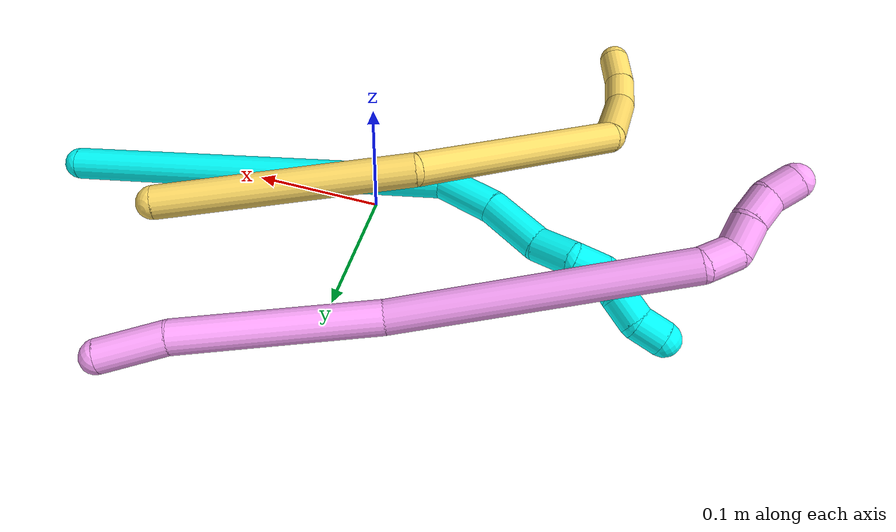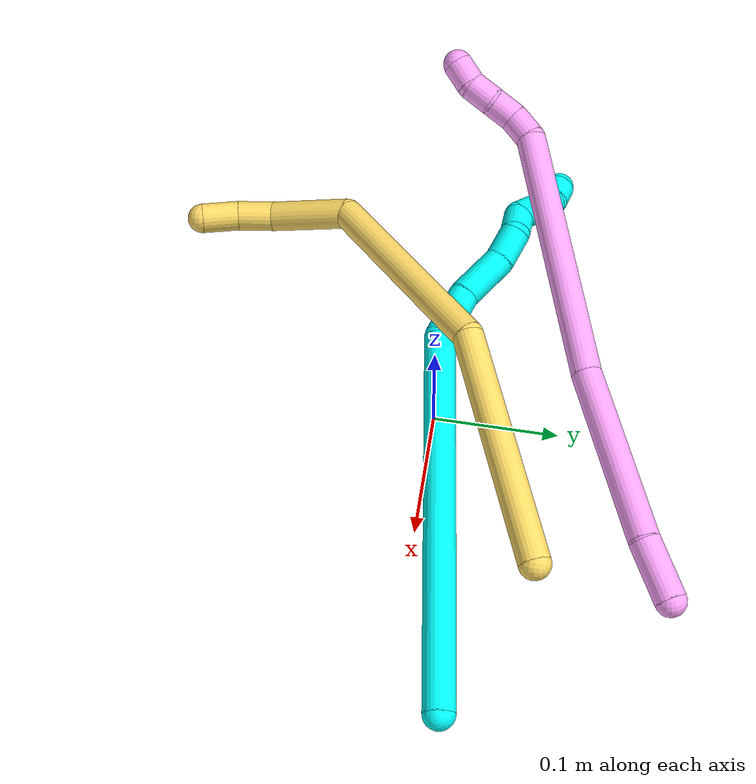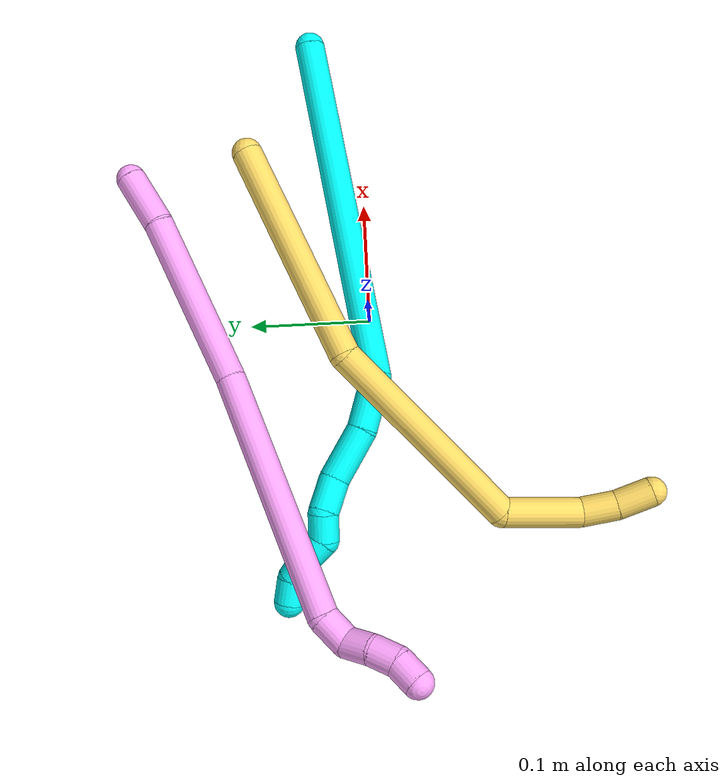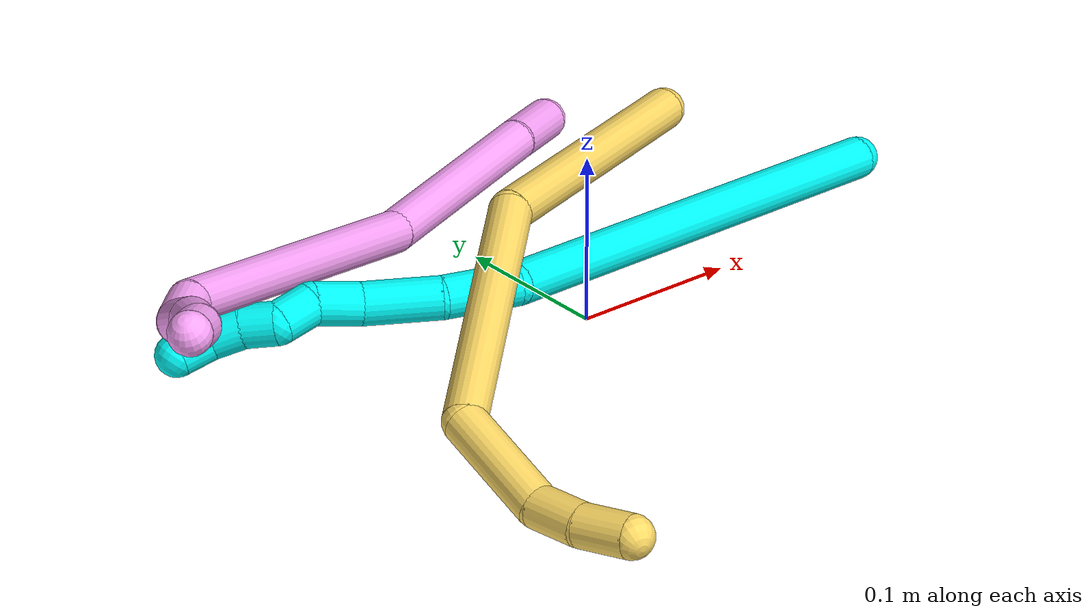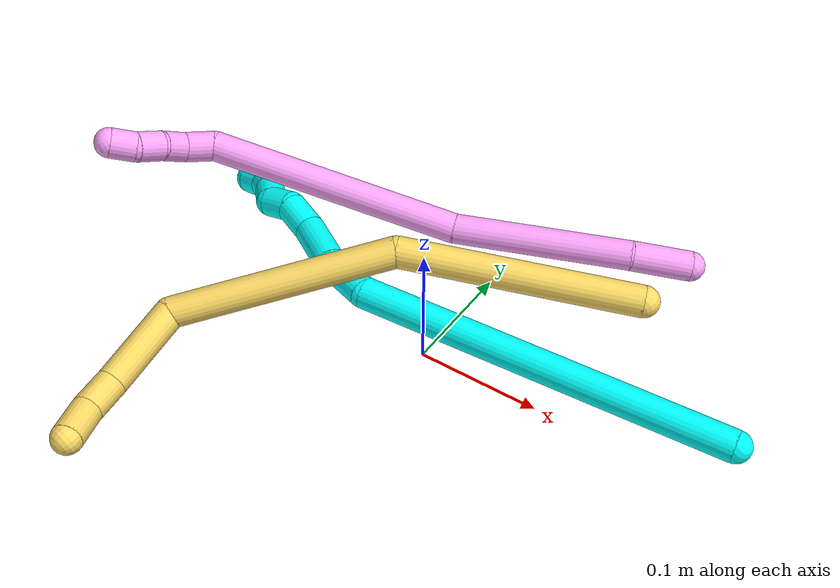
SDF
<sdf version="1.7">
 <world name="default">
  <model name="3">
   <static>0</static>
   <link name="3">
    <collision name="collision-cylinder-e_1_1_4">
     <pose>-0.122376 -0.035124 -0.078022 2.71859 -0.960614 -2.35977</pose>
     <geometry><cylinder><radius>0.0125</radius><length>0.298643</length></cylinder></geometry>
     <surface>
      <friction><ode><mu>1.16</mu><mu2>1.16</mu2><slip1>0</slip1><slip2>0</slip2></ode></friction>
      <contact><ode><kp>1e+06</kp><kd>1</kd><max_vel>0</max_vel><min_depth>0.001</min_depth></ode></contact>
     </surface>
    </collision>
    <visual name="visual-cylinder-e_1_1_4">
     <pose>-0.122376 -0.035124 -0.078022 2.71859 -0.960614 -2.35977</pose>
     <geometry><cylinder><radius>0.0125</radius><length>0.298643</length></cylinder></geometry>
     <material><ambient>0.003922 1 0.996078 1</ambient></material>
    </visual>
    <collision name="collision-cylinder-e_2_4_5">
     <pose>-0.261358 -0.065689 -0.169871 -2.82307 -0.850985 2.46035</pose>
     <geometry><cylinder><radius>0.0125</radius><length>0.044171</length></cylinder></geometry>
     <surface>
      <friction><ode><mu>1.16</mu><mu2>1.16</mu2><slip1>0</slip1><slip2>0</slip2></ode></friction>
      <contact><ode><kp>1e+06</kp><kd>1</kd><max_vel>0</max_vel><min_depth>0.001</min_depth></ode></contact>
     </surface>
    </collision>
    <visual name="visual-cylinder-e_2_4_5">
     <pose>-0.261358 -0.065689 -0.169871 -2.82307 -0.850985 2.46035</pose>
     <geometry><cylinder><radius>0.0125</radius><length>0.044171</length></cylinder></geometry>
     <material><ambient>0.003922 1 0.996078 1</ambient></material>
    </visual>
    <collision name="collision-cylinder-e_3_5_6">
     <pose>-0.293149 -0.051076 -0.197343 -2.50658 -0.730591 1.72194</pose>
     <geometry><cylinder><radius>0.0125</radius><length>0.045512</length></cylinder></geometry>
     <surface>
      <friction><ode><mu>1.16</mu><mu2>1.16</mu2><slip1>0</slip1><slip2>0</slip2></ode></friction>
      <contact><ode><kp>1e+06</kp><kd>1</kd><max_vel>0</max_vel><min_depth>0.001</min_depth></ode></contact>
     </surface>
    </collision>
    <visual name="visual-cylinder-e_3_5_6">
     <pose>-0.293149 -0.051076 -0.197343 -2.50658 -0.730591 1.72194</pose>
     <geometry><cylinder><radius>0.0125</radius><length>0.045512</length></cylinder></geometry>
     <material><ambient>0.003922 1 0.996078 1</ambient></material>
    </visual>
    <collision name="collision-cylinder-e_4_6_7">
     <pose>-0.320336 -0.037375 -0.21779 -2.64941 -0.999272 2.27901</pose>
     <geometry><cylinder><radius>0.0125</radius><length>0.028538</length></cylinder></geometry>
     <surface>
      <friction><ode><mu>1.16</mu><mu2>1.16</mu2><slip1>0</slip1><slip2>0</slip2></ode></friction>
      <contact><ode><kp>1e+06</kp><kd>1</kd><max_vel>0</max_vel><min_depth>0.001</min_depth></ode></contact>
     </surface>
    </collision>
    <visual name="visual-cylinder-e_4_6_7">
     <pose>-0.320336 -0.037375 -0.21779 -2.64941 -0.999272 2.27901</pose>
     <geometry><cylinder><radius>0.0125</radius><length>0.028538</length></cylinder></geometry>
     <material><ambient>0.003922 1 0.996078 1</ambient></material>
    </visual>
    <collision name="collision-cylinder-e_5_7_8">
     <pose>-0.339186 -0.034502 -0.233476 3.05466 -0.654926 -2.8869</pose>
     <geometry><cylinder><radius>0.0125</radius><length>0.022489</length></cylinder></geometry>
     <surface>
      <friction><ode><mu>1.16</mu><mu2>1.16</mu2><slip1>0</slip1><slip2>0</slip2></ode></friction>
      <contact><ode><kp>1e+06</kp><kd>1</kd><max_vel>0</max_vel><min_depth>0.001</min_depth></ode></contact>
     </surface>
    </collision>
    <visual name="visual-cylinder-e_5_7_8">
     <pose>-0.339186 -0.034502 -0.233476 3.05466 -0.654926 -2.8869</pose>
     <geometry><cylinder><radius>0.0125</radius><length>0.022489</length></cylinder></geometry>
     <material><ambient>0.003922 1 0.996078 1</ambient></material>
    </visual>
    <collision name="collision-cylinder-e_6_8_9">
     <pose>-0.35038 -0.028716 -0.248604 -2.33148 -0.447323 0.975524</pose>
     <geometry><cylinder><radius>0.0125</radius><length>0.020092</length></cylinder></geometry>
     <surface>
      <friction><ode><mu>1.16</mu><mu2>1.16</mu2><slip1>0</slip1><slip2>0</slip2></ode></friction>
      <contact><ode><kp>1e+06</kp><kd>1</kd><max_vel>0</max_vel><min_depth>0.001</min_depth></ode></contact>
     </surface>
    </collision>
    <visual name="visual-cylinder-e_6_8_9">
     <pose>-0.35038 -0.028716 -0.248604 -2.33148 -0.447323 0.975524</pose>
     <geometry><cylinder><radius>0.0125</radius><length>0.020092</length></cylinder></geometry>
     <material><ambient>0.003922 1 0.996078 1</ambient></material>
    </visual>
    <collision name="collision-cylinder-e_7_9_10">
     <pose>-0.358574 -0.01732 -0.262958 -2.60398 -0.387012 1.23661</pose>
     <geometry><cylinder><radius>0.0125</radius><length>0.02039</length></cylinder></geometry>
     <surface>
      <friction><ode><mu>1.16</mu><mu2>1.16</mu2><slip1>0</slip1><slip2>0</slip2></ode></friction>
      <contact><ode><kp>1e+06</kp><kd>1</kd><max_vel>0</max_vel><min_depth>0.001</min_depth></ode></contact>
     </surface>
    </collision>
    <visual name="visual-cylinder-e_7_9_10">
     <pose>-0.358574 -0.01732 -0.262958 -2.60398 -0.387012 1.23661</pose>
     <geometry><cylinder><radius>0.0125</radius><length>0.02039</length></cylinder></geometry>
     <material><ambient>0.003922 1 0.996078 1</ambient></material>
    </visual>
    <collision name="collision-cylinder-e_8_10_2">
     <pose>-0.368102 -0.011614 -0.279352 -3.0368 -0.59852 2.80484</pose>
     <geometry><cylinder><radius>0.0125</radius><length>0.020167</length></cylinder></geometry>
     <surface>
      <friction><ode><mu>1.16</mu><mu2>1.16</mu2><slip1>0</slip1><slip2>0</slip2></ode></friction>
      <contact><ode><kp>1e+06</kp><kd>1</kd><max_vel>0</max_vel><min_depth>0.001</min_depth></ode></contact>
     </surface>
    </collision>
    <visual name="visual-cylinder-e_8_10_2">
     <pose>-0.368102 -0.011614 -0.279352 -3.0368 -0.59852 2.80484</pose>
     <geometry><cylinder><radius>0.0125</radius><length>0.020167</length></cylinder></geometry>
     <material><ambient>0.003922 1 0.996078 1</ambient></material>
    </visual>
    <collision name="collision-sphere-2">
     <pose>-0.373784 -0.010743 -0.287636 0 -0 0</pose>
     <geometry><sphere><radius>0.0125</radius></sphere></geometry>
     <surface>
      <friction><ode><mu>1.16</mu><mu2>1.16</mu2><slip1>0</slip1><slip2>0</slip2></ode></friction>
      <contact><ode><kp>1e+06</kp><kd>1</kd><max_vel>0</max_vel><min_depth>0.001</min_depth></ode></contact>
     </surface>
    </collision>
    <visual name="visual-sphere-2">
     <pose>-0.373784 -0.010743 -0.287636 0 -0 0</pose>
     <geometry><sphere><radius>0.0125</radius></sphere></geometry>
     <material><ambient>0.003922 1 0.996078 1</ambient></material>
    </visual>
    <collision name="collision-sphere-10">
     <pose>-0.362421 -0.012486 -0.271067 0 -0 0</pose>
     <geometry><sphere><radius>0.0125</radius></sphere></geometry>
     <surface>
      <friction><ode><mu>1.16</mu><mu2>1.16</mu2><slip1>0</slip1><slip2>0</slip2></ode></friction>
      <contact><ode><kp>1e+06</kp><kd>1</kd><max_vel>0</max_vel><min_depth>0.001</min_depth></ode></contact>
     </surface>
    </collision>
    <visual name="visual-sphere-10">
     <pose>-0.362421 -0.012486 -0.271067 0 -0 0</pose>
     <geometry><sphere><radius>0.0125</radius></sphere></geometry>
     <material><ambient>0.003922 1 0.996078 1</ambient></material>
    </visual>
    <collision name="collision-sphere-9">
     <pose>-0.354726 -0.022155 -0.254849 0 -0 0</pose>
     <geometry><sphere><radius>0.0125</radius></sphere></geometry>
     <surface>
      <friction><ode><mu>1.16</mu><mu2>1.16</mu2><slip1>0</slip1><slip2>0</slip2></ode></friction>
      <contact><ode><kp>1e+06</kp><kd>1</kd><max_vel>0</max_vel><min_depth>0.001</min_depth></ode></contact>
     </surface>
    </collision>
    <visual name="visual-sphere-9">
     <pose>-0.354726 -0.022155 -0.254849 0 -0 0</pose>
     <geometry><sphere><radius>0.0125</radius></sphere></geometry>
     <material><ambient>0.003922 1 0.996078 1</ambient></material>
    </visual>
    <collision name="collision-sphere-4">
     <pose>-0.244751 -0.070248 -0.156044 0 -0 0</pose>
     <geometry><sphere><radius>0.0125</radius></sphere></geometry>
     <surface>
      <friction><ode><mu>1.16</mu><mu2>1.16</mu2><slip1>0</slip1><slip2>0</slip2></ode></friction>
      <contact><ode><kp>1e+06</kp><kd>1</kd><max_vel>0</max_vel><min_depth>0.001</min_depth></ode></contact>
     </surface>
    </collision>
    <visual name="visual-sphere-4">
     <pose>-0.244751 -0.070248 -0.156044 0 -0 0</pose>
     <geometry><sphere><radius>0.0125</radius></sphere></geometry>
     <material><ambient>0.003922 1 0.996078 1</ambient></material>
    </visual>
    <collision name="collision-sphere-1">
     <geometry><sphere><radius>0.0125</radius></sphere></geometry>
     <surface>
      <friction><ode><mu>1.16</mu><mu2>1.16</mu2><slip1>0</slip1><slip2>0</slip2></ode></friction>
      <contact><ode><kp>1e+06</kp><kd>1</kd><max_vel>0</max_vel><min_depth>0.001</min_depth></ode></contact>
     </surface>
    </collision>
    <visual name="visual-sphere-1">
     <geometry><sphere><radius>0.0125</radius></sphere></geometry>
     <material><ambient>0.003922 1 0.996078 1</ambient></material>
    </visual>
    <collision name="collision-sphere-8">
     <pose>-0.346035 -0.035276 -0.24236 0 -0 0</pose>
     <geometry><sphere><radius>0.0125</radius></sphere></geometry>
     <surface>
      <friction><ode><mu>1.16</mu><mu2>1.16</mu2><slip1>0</slip1><slip2>0</slip2></ode></friction>
      <contact><ode><kp>1e+06</kp><kd>1</kd><max_vel>0</max_vel><min_depth>0.001</min_depth></ode></contact>
     </surface>
    </collision>
    <visual name="visual-sphere-8">
     <pose>-0.346035 -0.035276 -0.24236 0 -0 0</pose>
     <geometry><sphere><radius>0.0125</radius></sphere></geometry>
     <material><ambient>0.003922 1 0.996078 1</ambient></material>
    </visual>
    <collision name="collision-sphere-5">
     <pose>-0.277964 -0.061129 -0.183699 0 -0 0</pose>
     <geometry><sphere><radius>0.0125</radius></sphere></geometry>
     <surface>
      <friction><ode><mu>1.16</mu><mu2>1.16</mu2><slip1>0</slip1><slip2>0</slip2></ode></friction>
      <contact><ode><kp>1e+06</kp><kd>1</kd><max_vel>0</max_vel><min_depth>0.001</min_depth></ode></contact>
     </surface>
    </collision>
    <visual name="visual-sphere-5">
     <pose>-0.277964 -0.061129 -0.183699 0 -0 0</pose>
     <geometry><sphere><radius>0.0125</radius></sphere></geometry>
     <material><ambient>0.003922 1 0.996078 1</ambient></material>
    </visual>
    <collision name="collision-sphere-6">
     <pose>-0.308335 -0.041022 -0.210988 0 -0 0</pose>
     <geometry><sphere><radius>0.0125</radius></sphere></geometry>
     <surface>
      <friction><ode><mu>1.16</mu><mu2>1.16</mu2><slip1>0</slip1><slip2>0</slip2></ode></friction>
      <contact><ode><kp>1e+06</kp><kd>1</kd><max_vel>0</max_vel><min_depth>0.001</min_depth></ode></contact>
     </surface>
    </collision>
    <visual name="visual-sphere-6">
     <pose>-0.308335 -0.041022 -0.210988 0 -0 0</pose>
     <geometry><sphere><radius>0.0125</radius></sphere></geometry>
     <material><ambient>0.003922 1 0.996078 1</ambient></material>
    </visual>
    <collision name="collision-sphere-7">
     <pose>-0.332337 -0.033728 -0.224592 0 -0 0</pose>
     <geometry><sphere><radius>0.0125</radius></sphere></geometry>
     <surface>
      <friction><ode><mu>1.16</mu><mu2>1.16</mu2><slip1>0</slip1><slip2>0</slip2></ode></friction>
      <contact><ode><kp>1e+06</kp><kd>1</kd><max_vel>0</max_vel><min_depth>0.001</min_depth></ode></contact>
     </surface>
    </collision>
    <visual name="visual-sphere-7">
     <pose>-0.332337 -0.033728 -0.224592 0 -0 0</pose>
     <geometry><sphere><radius>0.0125</radius></sphere></geometry>
     <material><ambient>0.003922 1 0.996078 1</ambient></material>
    </visual>
    <inertial>
     <pose>-0.199953 -0.037445 -0.134483 0 -0 0</pose>
     <mass>0.5</mass>
     <inertia>
      <ixx>-0.001831</ixx>
      <ixy>0</ixy>
      <ixz>0</ixz>
      <iyy>0.001104</iyy>
      <iyz>0</iyz>
      <izz>0.002341</izz>
     </inertia>
    </inertial>
   </link>
   <pose>0.241158 0.039985 0.012428 0.073349 0.677637 -0.052601</pose>
  </model>
  <model name="4">
   <static>0</static>
   <link name="4">
    <collision name="collision-cylinder-e_1_1_4">
     <pose>-0.01867 -0.004927 -0.015165 2.82747 -0.863948 -2.47982</pose>
     <geometry><cylinder><radius>0.0125</radius><length>0.049105</length></cylinder></geometry>
     <surface>
      <friction><ode><mu>1.16</mu><mu2>1.16</mu2><slip1>0</slip1><slip2>0</slip2></ode></friction>
      <contact><ode><kp>1e+06</kp><kd>1</kd><max_vel>0</max_vel><min_depth>0.001</min_depth></ode></contact>
     </surface>
    </collision>
    <visual name="visual-cylinder-e_1_1_4">
     <pose>-0.01867 -0.004927 -0.015165 2.82747 -0.863948 -2.47982</pose>
     <geometry><cylinder><radius>0.0125</radius><length>0.049105</length></cylinder></geometry>
     <material><ambient>1 0.65098 0.996078 1</ambient></material>
    </visual>
    <collision name="collision-cylinder-e_2_4_5">
     <pose>-0.095753 -0.033942 -0.067666 2.56862 -0.920515 -2.06929</pose>
     <geometry><cylinder><radius>0.0125</radius><length>0.146781</length></cylinder></geometry>
     <surface>
      <friction><ode><mu>1.16</mu><mu2>1.16</mu2><slip1>0</slip1><slip2>0</slip2></ode></friction>
      <contact><ode><kp>1e+06</kp><kd>1</kd><max_vel>0</max_vel><min_depth>0.001</min_depth></ode></contact>
     </surface>
    </collision>
    <visual name="visual-cylinder-e_2_4_5">
     <pose>-0.095753 -0.033942 -0.067666 2.56862 -0.920515 -2.06929</pose>
     <geometry><cylinder><radius>0.0125</radius><length>0.146781</length></cylinder></geometry>
     <material><ambient>1 0.65098 0.996078 1</ambient></material>
    </visual>
    <collision name="collision-cylinder-e_3_5_6">
     <pose>-0.224646 -0.094255 -0.174814 2.66294 -0.73066 -2.00592</pose>
     <geometry><cylinder><radius>0.0125</radius><length>0.21122</length></cylinder></geometry>
     <surface>
      <friction><ode><mu>1.16</mu><mu2>1.16</mu2><slip1>0</slip1><slip2>0</slip2></ode></friction>
      <contact><ode><kp>1e+06</kp><kd>1</kd><max_vel>0</max_vel><min_depth>0.001</min_depth></ode></contact>
     </surface>
    </collision>
    <visual name="visual-cylinder-e_3_5_6">
     <pose>-0.224646 -0.094255 -0.174814 2.66294 -0.73066 -2.00592</pose>
     <geometry><cylinder><radius>0.0125</radius><length>0.21122</length></cylinder></geometry>
     <material><ambient>1 0.65098 0.996078 1</ambient></material>
    </visual>
    <collision name="collision-cylinder-e_4_6_7">
     <pose>-0.306135 -0.130608 -0.251183 3.12215 -1.03352 -3.10739</pose>
     <geometry><cylinder><radius>0.0125</radius><length>0.02563</length></cylinder></geometry>
     <surface>
      <friction><ode><mu>1.16</mu><mu2>1.16</mu2><slip1>0</slip1><slip2>0</slip2></ode></friction>
      <contact><ode><kp>1e+06</kp><kd>1</kd><max_vel>0</max_vel><min_depth>0.001</min_depth></ode></contact>
     </surface>
    </collision>
    <visual name="visual-cylinder-e_4_6_7">
     <pose>-0.306135 -0.130608 -0.251183 3.12215 -1.03352 -3.10739</pose>
     <geometry><cylinder><radius>0.0125</radius><length>0.02563</length></cylinder></geometry>
     <material><ambient>1 0.65098 0.996078 1</ambient></material>
    </visual>
    <collision name="collision-cylinder-e_5_7_8">
     <pose>-0.322543 -0.124767 -0.266241 -2.52947 -0.47933 1.31652</pose>
     <geometry><cylinder><radius>0.0125</radius><length>0.023412</length></cylinder></geometry>
     <surface>
      <friction><ode><mu>1.16</mu><mu2>1.16</mu2><slip1>0</slip1><slip2>0</slip2></ode></friction>
      <contact><ode><kp>1e+06</kp><kd>1</kd><max_vel>0</max_vel><min_depth>0.001</min_depth></ode></contact>
     </surface>
    </collision>
    <visual name="visual-cylinder-e_5_7_8">
     <pose>-0.322543 -0.124767 -0.266241 -2.52947 -0.47933 1.31652</pose>
     <geometry><cylinder><radius>0.0125</radius><length>0.023412</length></cylinder></geometry>
     <material><ambient>1 0.65098 0.996078 1</ambient></material>
    </visual>
    <collision name="collision-cylinder-e_6_8_9">
     <pose>-0.335252 -0.114433 -0.281891 -2.59332 -0.717538 1.85469</pose>
     <geometry><cylinder><radius>0.0125</radius><length>0.022235</length></cylinder></geometry>
     <surface>
      <friction><ode><mu>1.16</mu><mu2>1.16</mu2><slip1>0</slip1><slip2>0</slip2></ode></friction>
      <contact><ode><kp>1e+06</kp><kd>1</kd><max_vel>0</max_vel><min_depth>0.001</min_depth></ode></contact>
     </surface>
    </collision>
    <visual name="visual-cylinder-e_6_8_9">
     <pose>-0.335252 -0.114433 -0.281891 -2.59332 -0.717538 1.85469</pose>
     <geometry><cylinder><radius>0.0125</radius><length>0.022235</length></cylinder></geometry>
     <material><ambient>1 0.65098 0.996078 1</ambient></material>
    </visual>
    <collision name="collision-cylinder-e_7_9_2">
     <pose>-0.350124 -0.109704 -0.296753 -3.09458 -0.774888 3.02649</pose>
     <geometry><cylinder><radius>0.0125</radius><length>0.021616</length></cylinder></geometry>
     <surface>
      <friction><ode><mu>1.16</mu><mu2>1.16</mu2><slip1>0</slip1><slip2>0</slip2></ode></friction>
      <contact><ode><kp>1e+06</kp><kd>1</kd><max_vel>0</max_vel><min_depth>0.001</min_depth></ode></contact>
     </surface>
    </collision>
    <visual name="visual-cylinder-e_7_9_2">
     <pose>-0.350124 -0.109704 -0.296753 -3.09458 -0.774888 3.02649</pose>
     <geometry><cylinder><radius>0.0125</radius><length>0.021616</length></cylinder></geometry>
     <material><ambient>1 0.65098 0.996078 1</ambient></material>
    </visual>
    <collision name="collision-sphere-2">
     <pose>-0.357686 -0.109341 -0.304467 0 -0 0</pose>
     <geometry><sphere><radius>0.0125</radius></sphere></geometry>
     <surface>
      <friction><ode><mu>1.16</mu><mu2>1.16</mu2><slip1>0</slip1><slip2>0</slip2></ode></friction>
      <contact><ode><kp>1e+06</kp><kd>1</kd><max_vel>0</max_vel><min_depth>0.001</min_depth></ode></contact>
     </surface>
    </collision>
    <visual name="visual-sphere-2">
     <pose>-0.357686 -0.109341 -0.304467 0 -0 0</pose>
     <geometry><sphere><radius>0.0125</radius></sphere></geometry>
     <material><ambient>1 0.65098 0.996078 1</ambient></material>
    </visual>
    <collision name="collision-sphere-9">
     <pose>-0.342562 -0.110067 -0.289039 0 -0 0</pose>
     <geometry><sphere><radius>0.0125</radius></sphere></geometry>
     <surface>
      <friction><ode><mu>1.16</mu><mu2>1.16</mu2><slip1>0</slip1><slip2>0</slip2></ode></friction>
      <contact><ode><kp>1e+06</kp><kd>1</kd><max_vel>0</max_vel><min_depth>0.001</min_depth></ode></contact>
     </surface>
    </collision>
    <visual name="visual-sphere-9">
     <pose>-0.342562 -0.110067 -0.289039 0 -0 0</pose>
     <geometry><sphere><radius>0.0125</radius></sphere></geometry>
     <material><ambient>1 0.65098 0.996078 1</ambient></material>
    </visual>
    <collision name="collision-sphere-4">
     <pose>-0.03734 -0.009854 -0.030331 0 -0 0</pose>
     <geometry><sphere><radius>0.0125</radius></sphere></geometry>
     <surface>
      <friction><ode><mu>1.16</mu><mu2>1.16</mu2><slip1>0</slip1><slip2>0</slip2></ode></friction>
      <contact><ode><kp>1e+06</kp><kd>1</kd><max_vel>0</max_vel><min_depth>0.001</min_depth></ode></contact>
     </surface>
    </collision>
    <visual name="visual-sphere-4">
     <pose>-0.03734 -0.009854 -0.030331 0 -0 0</pose>
     <geometry><sphere><radius>0.0125</radius></sphere></geometry>
     <material><ambient>1 0.65098 0.996078 1</ambient></material>
    </visual>
    <collision name="collision-sphere-1">
     <geometry><sphere><radius>0.0125</radius></sphere></geometry>
     <surface>
      <friction><ode><mu>1.16</mu><mu2>1.16</mu2><slip1>0</slip1><slip2>0</slip2></ode></friction>
      <contact><ode><kp>1e+06</kp><kd>1</kd><max_vel>0</max_vel><min_depth>0.001</min_depth></ode></contact>
     </surface>
    </collision>
    <visual name="visual-sphere-1">
     <geometry><sphere><radius>0.0125</radius></sphere></geometry>
     <material><ambient>1 0.65098 0.996078 1</ambient></material>
    </visual>
    <collision name="collision-sphere-8">
     <pose>-0.327942 -0.118799 -0.274742 0 -0 0</pose>
     <geometry><sphere><radius>0.0125</radius></sphere></geometry>
     <surface>
      <friction><ode><mu>1.16</mu><mu2>1.16</mu2><slip1>0</slip1><slip2>0</slip2></ode></friction>
      <contact><ode><kp>1e+06</kp><kd>1</kd><max_vel>0</max_vel><min_depth>0.001</min_depth></ode></contact>
     </surface>
    </collision>
    <visual name="visual-sphere-8">
     <pose>-0.327942 -0.118799 -0.274742 0 -0 0</pose>
     <geometry><sphere><radius>0.0125</radius></sphere></geometry>
     <material><ambient>1 0.65098 0.996078 1</ambient></material>
    </visual>
    <collision name="collision-sphere-5">
     <pose>-0.154166 -0.058029 -0.105001 0 -0 0</pose>
     <geometry><sphere><radius>0.0125</radius></sphere></geometry>
     <surface>
      <friction><ode><mu>1.16</mu><mu2>1.16</mu2><slip1>0</slip1><slip2>0</slip2></ode></friction>
      <contact><ode><kp>1e+06</kp><kd>1</kd><max_vel>0</max_vel><min_depth>0.001</min_depth></ode></contact>
     </surface>
    </collision>
    <visual name="visual-sphere-5">
     <pose>-0.154166 -0.058029 -0.105001 0 -0 0</pose>
     <geometry><sphere><radius>0.0125</radius></sphere></geometry>
     <material><ambient>1 0.65098 0.996078 1</ambient></material>
    </visual>
    <collision name="collision-sphere-6">
     <pose>-0.295126 -0.130481 -0.244626 0 -0 0</pose>
     <geometry><sphere><radius>0.0125</radius></sphere></geometry>
     <surface>
      <friction><ode><mu>1.16</mu><mu2>1.16</mu2><slip1>0</slip1><slip2>0</slip2></ode></friction>
      <contact><ode><kp>1e+06</kp><kd>1</kd><max_vel>0</max_vel><min_depth>0.001</min_depth></ode></contact>
     </surface>
    </collision>
    <visual name="visual-sphere-6">
     <pose>-0.295126 -0.130481 -0.244626 0 -0 0</pose>
     <geometry><sphere><radius>0.0125</radius></sphere></geometry>
     <material><ambient>1 0.65098 0.996078 1</ambient></material>
    </visual>
    <collision name="collision-sphere-7">
     <pose>-0.317144 -0.130736 -0.25774 0 -0 0</pose>
     <geometry><sphere><radius>0.0125</radius></sphere></geometry>
     <surface>
      <friction><ode><mu>1.16</mu><mu2>1.16</mu2><slip1>0</slip1><slip2>0</slip2></ode></friction>
      <contact><ode><kp>1e+06</kp><kd>1</kd><max_vel>0</max_vel><min_depth>0.001</min_depth></ode></contact>
     </surface>
    </collision>
    <visual name="visual-sphere-7">
     <pose>-0.317144 -0.130736 -0.25774 0 -0 0</pose>
     <geometry><sphere><radius>0.0125</radius></sphere></geometry>
     <material><ambient>1 0.65098 0.996078 1</ambient></material>
    </visual>
    <inertial>
     <pose>-0.185683 -0.072634 -0.145909 0 -0 0</pose>
     <mass>0.5</mass>
     <inertia>
      <ixx>-0.001044</ixx>
      <ixy>0</ixy>
      <ixz>0</ixz>
      <iyy>5.5e-05</iyy>
      <iyz>0</iyz>
      <izz>0.001096</izz>
     </inertia>
    </inertial>
   </link>
   <pose>0.131091 0.197204 0.012508 3.00107 -0.491056 0.806569</pose>
  </model>
  <model name="5">
   <static>0</static>
   <link name="5">
    <collision name="collision-cylinder-e_1_1_4">
     <pose>-0.072789 -0.035093 0.049323 0.618405 -0.877063 -0.297423</pose>
     <geometry><cylinder><radius>0.0125</radius><length>0.18934</length></cylinder></geometry>
     <surface>
      <friction><ode><mu>1.16</mu><mu2>1.16</mu2><slip1>0</slip1><slip2>0</slip2></ode></friction>
      <contact><ode><kp>1e+06</kp><kd>1</kd><max_vel>0</max_vel><min_depth>0.001</min_depth></ode></contact>
     </surface>
    </collision>
    <visual name="visual-cylinder-e_1_1_4">
     <pose>-0.072789 -0.035093 0.049323 0.618405 -0.877063 -0.297423</pose>
     <geometry><cylinder><radius>0.0125</radius><length>0.18934</length></cylinder></geometry>
     <material><ambient>1 0.858824 0.4 1</ambient></material>
    </visual>
    <collision name="collision-cylinder-e_2_4_5">
     <pose>-0.183502 -0.104331 0.17247 0.433206 -0.436295 -0.097484</pose>
     <geometry><cylinder><radius>0.0125</radius><length>0.179491</length></cylinder></geometry>
     <surface>
      <friction><ode><mu>1.16</mu><mu2>1.16</mu2><slip1>0</slip1><slip2>0</slip2></ode></friction>
      <contact><ode><kp>1e+06</kp><kd>1</kd><max_vel>0</max_vel><min_depth>0.001</min_depth></ode></contact>
     </surface>
    </collision>
    <visual name="visual-cylinder-e_2_4_5">
     <pose>-0.183502 -0.104331 0.17247 0.433206 -0.436295 -0.097484</pose>
     <geometry><cylinder><radius>0.0125</radius><length>0.179491</length></cylinder></geometry>
     <material><ambient>1 0.858824 0.4 1</ambient></material>
    </visual>
    <collision name="collision-cylinder-e_3_5_6">
     <pose>-0.21602 -0.136983 0.280519 -0.043579 0.156543 -0.003419</pose>
     <geometry><cylinder><radius>0.0125</radius><length>0.069361</length></cylinder></geometry>
     <surface>
      <friction><ode><mu>1.16</mu><mu2>1.16</mu2><slip1>0</slip1><slip2>0</slip2></ode></friction>
      <contact><ode><kp>1e+06</kp><kd>1</kd><max_vel>0</max_vel><min_depth>0.001</min_depth></ode></contact>
     </surface>
    </collision>
    <visual name="visual-cylinder-e_3_5_6">
     <pose>-0.21602 -0.136983 0.280519 -0.043579 0.156543 -0.003419</pose>
     <geometry><cylinder><radius>0.0125</radius><length>0.069361</length></cylinder></geometry>
     <material><ambient>1 0.858824 0.4 1</ambient></material>
    </visual>
    <collision name="collision-cylinder-e_4_6_7">
     <pose>-0.209245 -0.129231 0.328776 -0.419599 0.088834 -0.018928</pose>
     <geometry><cylinder><radius>0.0125</radius><length>0.030853</length></cylinder></geometry>
     <surface>
      <friction><ode><mu>1.16</mu><mu2>1.16</mu2><slip1>0</slip1><slip2>0</slip2></ode></friction>
      <contact><ode><kp>1e+06</kp><kd>1</kd><max_vel>0</max_vel><min_depth>0.001</min_depth></ode></contact>
     </surface>
    </collision>
    <visual name="visual-cylinder-e_4_6_7">
     <pose>-0.209245 -0.129231 0.328776 -0.419599 0.088834 -0.018928</pose>
     <geometry><cylinder><radius>0.0125</radius><length>0.030853</length></cylinder></geometry>
     <material><ambient>1 0.858824 0.4 1</ambient></material>
    </visual>
    <collision name="collision-cylinder-e_5_7_2">
     <pose>-0.205231 -0.114464 0.355464 -0.591793 0.171791 -0.052487</pose>
     <geometry><cylinder><radius>0.0125</radius><length>0.030955</length></cylinder></geometry>
     <surface>
      <friction><ode><mu>1.16</mu><mu2>1.16</mu2><slip1>0</slip1><slip2>0</slip2></ode></friction>
      <contact><ode><kp>1e+06</kp><kd>1</kd><max_vel>0</max_vel><min_depth>0.001</min_depth></ode></contact>
     </surface>
    </collision>
    <visual name="visual-cylinder-e_5_7_2">
     <pose>-0.205231 -0.114464 0.355464 -0.591793 0.171791 -0.052487</pose>
     <geometry><cylinder><radius>0.0125</radius><length>0.030955</length></cylinder></geometry>
     <material><ambient>1 0.858824 0.4 1</ambient></material>
    </visual>
    <collision name="collision-sphere-2">
     <pose>-0.202585 -0.105958 0.368121 0 -0 0</pose>
     <geometry><sphere><radius>0.0125</radius></sphere></geometry>
     <surface>
      <friction><ode><mu>1.16</mu><mu2>1.16</mu2><slip1>0</slip1><slip2>0</slip2></ode></friction>
      <contact><ode><kp>1e+06</kp><kd>1</kd><max_vel>0</max_vel><min_depth>0.001</min_depth></ode></contact>
     </surface>
    </collision>
    <visual name="visual-sphere-2">
     <pose>-0.202585 -0.105958 0.368121 0 -0 0</pose>
     <geometry><sphere><radius>0.0125</radius></sphere></geometry>
     <material><ambient>1 0.858824 0.4 1</ambient></material>
    </visual>
    <collision name="collision-sphere-7">
     <pose>-0.207876 -0.122971 0.342808 0 -0 0</pose>
     <geometry><sphere><radius>0.0125</radius></sphere></geometry>
     <surface>
      <friction><ode><mu>1.16</mu><mu2>1.16</mu2><slip1>0</slip1><slip2>0</slip2></ode></friction>
      <contact><ode><kp>1e+06</kp><kd>1</kd><max_vel>0</max_vel><min_depth>0.001</min_depth></ode></contact>
     </surface>
    </collision>
    <visual name="visual-sphere-7">
     <pose>-0.207876 -0.122971 0.342808 0 -0 0</pose>
     <geometry><sphere><radius>0.0125</radius></sphere></geometry>
     <material><ambient>1 0.858824 0.4 1</ambient></material>
    </visual>
    <collision name="collision-sphere-6">
     <pose>-0.210614 -0.135491 0.314743 0 -0 0</pose>
     <geometry><sphere><radius>0.0125</radius></sphere></geometry>
     <surface>
      <friction><ode><mu>1.16</mu><mu2>1.16</mu2><slip1>0</slip1><slip2>0</slip2></ode></friction>
      <contact><ode><kp>1e+06</kp><kd>1</kd><max_vel>0</max_vel><min_depth>0.001</min_depth></ode></contact>
     </surface>
    </collision>
    <visual name="visual-sphere-6">
     <pose>-0.210614 -0.135491 0.314743 0 -0 0</pose>
     <geometry><sphere><radius>0.0125</radius></sphere></geometry>
     <material><ambient>1 0.858824 0.4 1</ambient></material>
    </visual>
    <collision name="collision-sphere-5">
     <pose>-0.221427 -0.138476 0.246295 0 -0 0</pose>
     <geometry><sphere><radius>0.0125</radius></sphere></geometry>
     <surface>
      <friction><ode><mu>1.16</mu><mu2>1.16</mu2><slip1>0</slip1><slip2>0</slip2></ode></friction>
      <contact><ode><kp>1e+06</kp><kd>1</kd><max_vel>0</max_vel><min_depth>0.001</min_depth></ode></contact>
     </surface>
    </collision>
    <visual name="visual-sphere-5">
     <pose>-0.221427 -0.138476 0.246295 0 -0 0</pose>
     <geometry><sphere><radius>0.0125</radius></sphere></geometry>
     <material><ambient>1 0.858824 0.4 1</ambient></material>
    </visual>
    <collision name="collision-sphere-1">
     <geometry><sphere><radius>0.0125</radius></sphere></geometry>
     <surface>
      <friction><ode><mu>1.16</mu><mu2>1.16</mu2><slip1>0</slip1><slip2>0</slip2></ode></friction>
      <contact><ode><kp>1e+06</kp><kd>1</kd><max_vel>0</max_vel><min_depth>0.001</min_depth></ode></contact>
     </surface>
    </collision>
    <visual name="visual-sphere-1">
     <geometry><sphere><radius>0.0125</radius></sphere></geometry>
     <material><ambient>1 0.858824 0.4 1</ambient></material>
    </visual>
    <collision name="collision-sphere-4">
     <pose>-0.145577 -0.070187 0.098645 0 -0 0</pose>
     <geometry><sphere><radius>0.0125</radius></sphere></geometry>
     <surface>
      <friction><ode><mu>1.16</mu><mu2>1.16</mu2><slip1>0</slip1><slip2>0</slip2></ode></friction>
      <contact><ode><kp>1e+06</kp><kd>1</kd><max_vel>0</max_vel><min_depth>0.001</min_depth></ode></contact>
     </surface>
    </collision>
    <visual name="visual-sphere-4">
     <pose>-0.145577 -0.070187 0.098645 0 -0 0</pose>
     <geometry><sphere><radius>0.0125</radius></sphere></geometry>
     <material><ambient>1 0.858824 0.4 1</ambient></material>
    </visual>
    <inertial>
     <pose>-0.149022 -0.084806 0.161799 0 -0 0</pose>
     <mass>0.5</mass>
     <inertia>
      <ixx>0.000662</ixx>
      <ixy>0</ixy>
      <ixz>0</ixz>
      <iyy>0.000849</iyy>
      <iyz>0</iyz>
      <izz>0.001064</izz>
     </inertia>
    </inertial>
   </link>
   <pose>0.135553 0.093456 0.056203 1.8992 0.684916 0.013332</pose>
  </model>
 </world>
</sdf>
